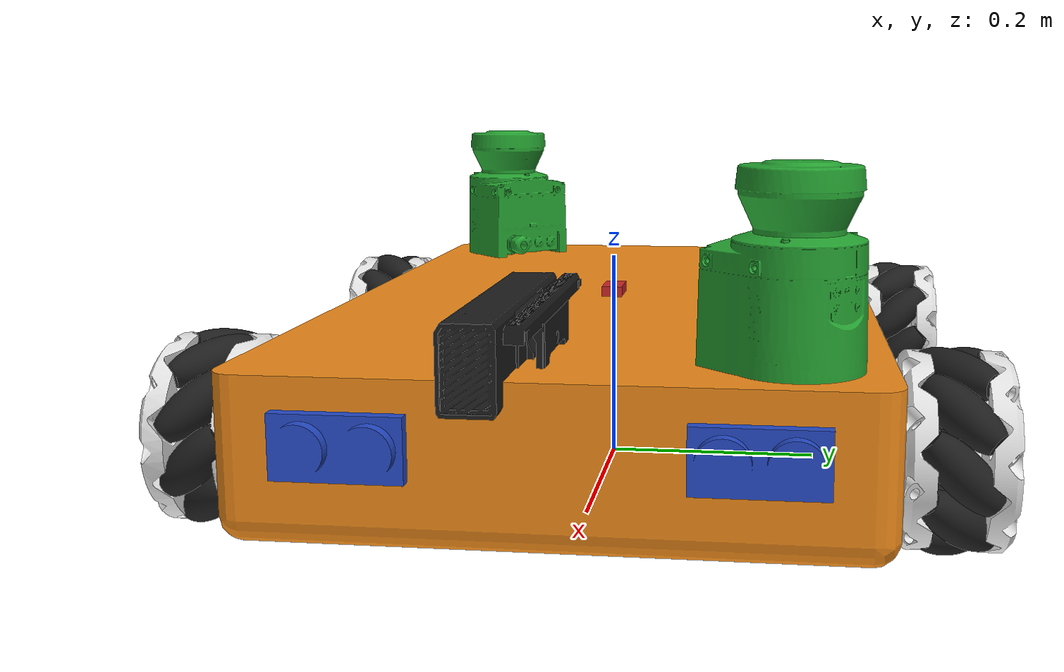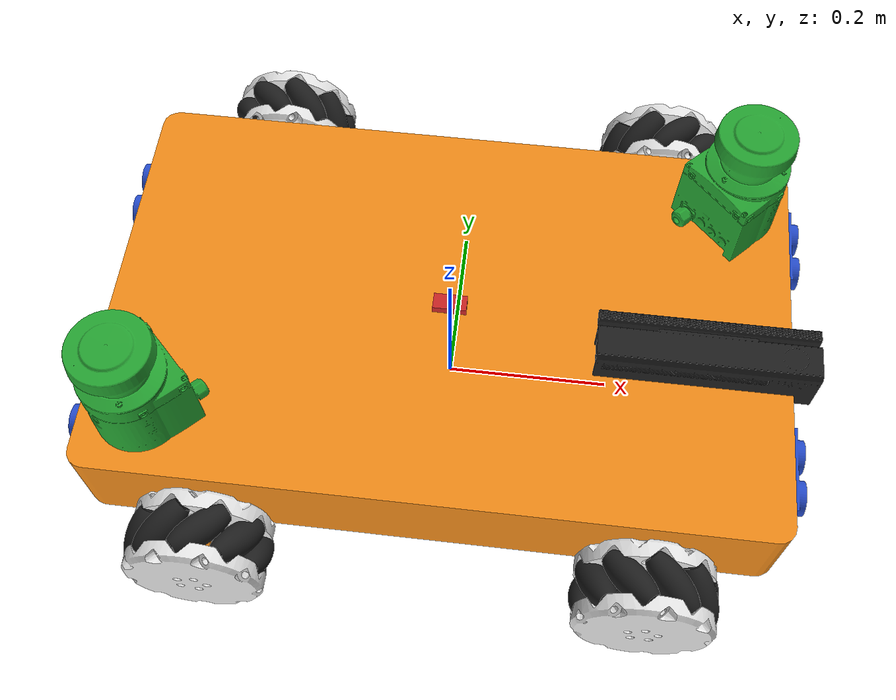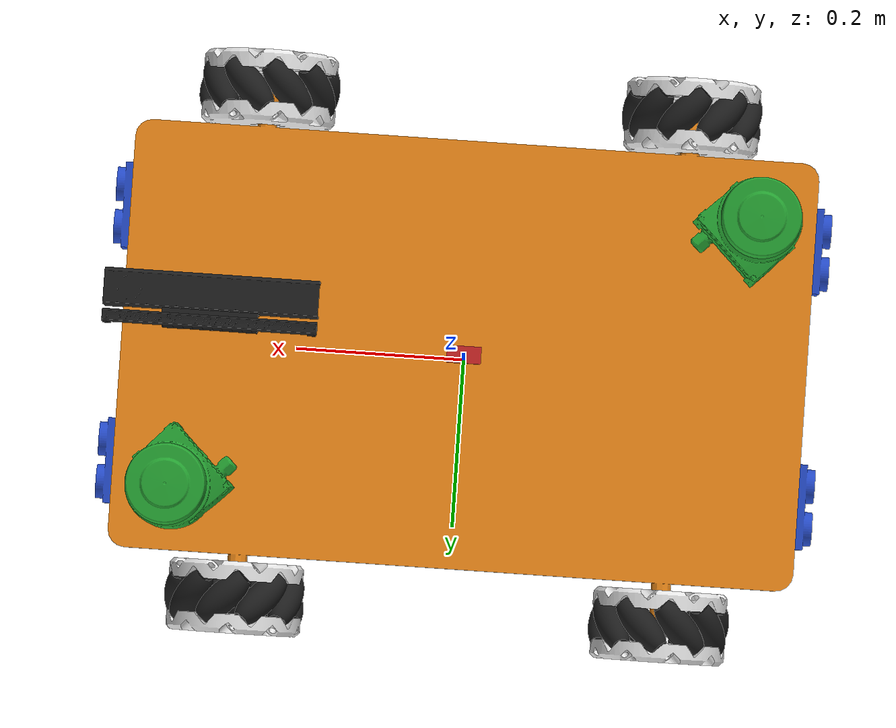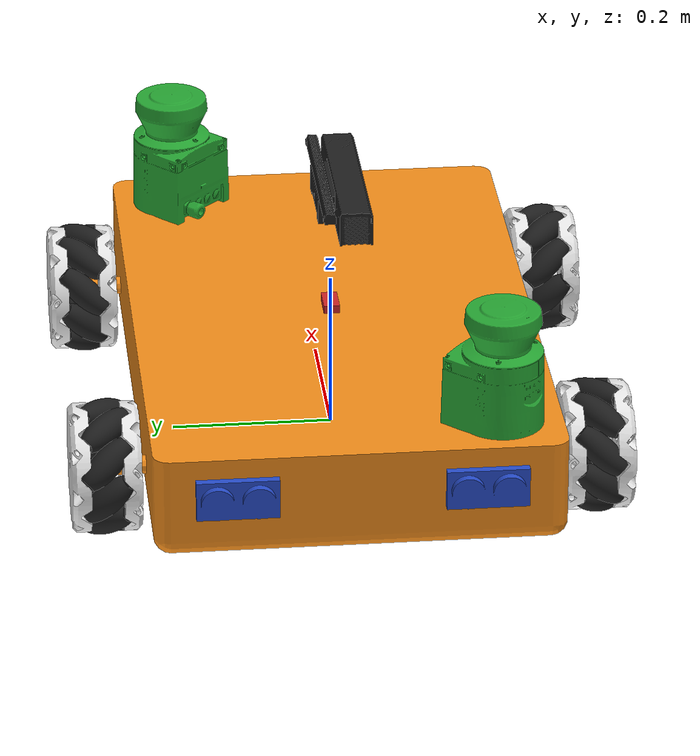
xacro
<?xml version="1.0"?>
<!-- Revolute-Revolute Manipulator -->
<robot name="zm_robot" xmlns:xacro="http://www.ros.org/wiki/xacro">

  <!-- Constants for robot dimensions -->
  <xacro:property name="wheel_rotationx" value="-1.5708"/>
  <xacro:property name="agv_base_h" value="0.081572" /> <!-- agv_base height -->
  <xacro:property name="wheel_before_L" value="0.25" /> <!-- wheel before L -->
  <xacro:property name="wheel_after_L" value="-0.25" /> <!-- wheel_after_L -->
  <xacro:property name="wheel_left_W" value="0.3" /> <!-- wheel left W -->
  <xacro:property name="wheel_right_W" value="-0.3" /> <!-- wheel right W -->

  <!-- ultrasound position on robot-->
  <xacro:property name="ul_left_front_x" value="0.4"/>
  <xacro:property name="ul_left_front_y" value="0.15" />
  <xacro:property name="ul_right_front_x" value="0.4" />
  <xacro:property name="ul_right_front_y" value="-0.15" />
  <xacro:property name="ul_left_rear_x" value="-0.4" />
  <xacro:property name="ul_left_rear_y" value="0.15" />
  <xacro:property name="ul_right_rear_x" value="-0.4" />
  <xacro:property name="ul_right_rear_y" value="-0.15" />
  <xacro:property name="ul_hight" value="0.03" />
  <xacro:property name="ul_front_rotation" value="0" />
  <xacro:property name="ul_rear_rotation" value="3.141592654" />

  <!-- roller position -->
  <xacro:property name="roller_1_y" value="0"/>
  <xacro:property name="roller_2_y" value="0.041781"/>
  <xacro:property name="roller_3_y" value="0.064012"/>
  <xacro:property name="roller_4_y" value="0.056291"/>
  <xacro:property name="roller_5_y" value="0.022231"/>
  <xacro:property name="roller_6_y" value="-0.022231"/>
  <xacro:property name="roller_7_y" value="-0.056291"/>
  <xacro:property name="roller_8_y" value="-0.064012"/>
  <xacro:property name="roller_9_y" value="-0.041781"/>
  <xacro:property name="roller_1_x" value="0.065"/>
  <xacro:property name="roller_2_x" value="0.049792"/>
  <xacro:property name="roller_3_x" value="0.011287"/>
  <xacro:property name="roller_4_x" value="-0.0325"/>
  <xacro:property name="roller_5_x" value="-0.06108"/>
  <xacro:property name="roller_6_x" value="-0.06108"/>
  <xacro:property name="roller_7_x" value="-0.0325"/>
  <xacro:property name="roller_8_x" value="0.011287"/>
  <xacro:property name="roller_9_x" value="0.049792"/>

  <!-- Import Rviz colors -->
  <xacro:include filename="$(find zm_robot_description)/urdf/materials.xacro" />

  <!-- Import rollor and wheel -->
  <xacro:include filename="$(find zm_robot_description)/urdf/zm_robot_roller.urdf.xacro"/>
  <xacro:include filename="$(find zm_robot_description)/urdf/zm_robot_wheel_LF.urdf.xacro"/>
  <xacro:include filename="$(find zm_robot_description)/urdf/zm_robot_wheel_LR.urdf.xacro"/>
  <xacro:include filename="$(find zm_robot_description)/urdf/zm_robot_wheel_RF.urdf.xacro"/>
  <xacro:include filename="$(find zm_robot_description)/urdf/zm_robot_wheel_RR.urdf.xacro"/>

  <!-- Import Ultrasound -->
  <xacro:include filename="$(find zm_robot_description)/urdf/zm_robot_ultrasound.urdf.xacro"/>

  <!-- Used for fixing robot to Gazebo 'base_link' -->
  <link name="base_footprint"/>

  <joint name="base_joint" type="fixed">
    <parent link="base_footprint"/>
    <child link="base_link"/>
    <origin xyz="0 0 ${agv_base_h}" rpy="0 0 0"/>
  </joint>

  <!-- Base Link -->
  <link name="base_link">
    <collision>
      <origin xyz="0 0 0" rpy="0 0 0"/>
      <geometry>
        <mesh filename="file://$(find zm_robot_description)/meshes/agv_base.stl" scale="0.01 0.01 0.01"/>
      </geometry>
    </collision>

    <visual>
      <origin xyz="0 0 0" rpy="0 0 0"/>
      <geometry>
        <mesh filename="file://$(find zm_robot_description)/meshes/agv_base.stl" scale="0.01 0.01 0.01"/>
      </geometry>
      <material name="orange"/>
    </visual>

    <inertial>
      <origin xyz="0 0 0" rpy="0 0 0"/>
      <mass value="29.964"/>
      <inertia ixx="0.892684320" ixy="0.0" ixz="0.0"
	             iyy="1.966612482" iyz="0.0"
	             izz="2.677227828"/>
    </inertial>
  </link>

  <!-- sick LiDAR 0 -->
  <joint name="sick_lidar0_joint" type="fixed">
    <parent link="base_link"/>
    <child link="sick_lidar0"/>
    <origin xyz="0.33 0.175 0.195722" rpy="0 0 0.7854"/>
  </joint>

  <link name="sick_lidar0">
    <collision>
      <origin xyz="0 0 0" rpy="0 0 0"/>
      <geometry>
        <mesh filename="file://$(find zm_robot_description)/meshes/sick_s30b.stl" scale="0.01 0.01 0.01"/>
      </geometry>
    </collision>

    <visual>
      <origin xyz="0 0 0" rpy="0 0 0"/>
      <geometry>
        <mesh filename="file://$(find zm_robot_description)/meshes/sick_s30b.stl" scale="0.01 0.01 0.01"/>
      </geometry>
      <material name="green"/>
    </visual>

    <inertial>
      <origin xyz="0 0 0" rpy="0 0 0"/>
      <mass value="1.2"/>
      <inertia ixx="0.0001" ixy="0.0" ixz="0.0"
	             iyy="0.0001" iyz="0.0"
	             izz="0.0001"/>
    </inertial>
  </link>

  <!-- sick LiDAR 1 -->
  <joint name="sick_lidar1_joint" type="fixed">
    <parent link="base_link"/>
    <child link="sick_lidar1"/>
    <origin xyz="-0.33 -0.175 0.195722" rpy="0 0 -2.35619"/>
  </joint>

  <link name="sick_lidar1">
    <collision>
      <origin xyz="0 0 0" rpy="0 0 0"/>
      <geometry>
        <mesh filename="file://$(find zm_robot_description)/meshes/sick_s30b.stl" scale="0.01 0.01 0.01"/>
      </geometry>
    </collision>

    <visual>
      <origin xyz="0 0 0" rpy="0 0 0"/>
      <geometry>
        <mesh filename="file://$(find zm_robot_description)/meshes/sick_s30b.stl" scale="0.01 0.01 0.01"/>
      </geometry>
      <material name="green"/>
    </visual>

    <inertial>
      <origin xyz="0 0 0" rpy="0 0 0"/>
      <mass value="1.2"/>
      <inertia ixx="0.0001" ixy="0.0" ixz="0.0"
	             iyy="0.0001" iyz="0.0"
	             izz="0.0001"/>
    </inertial>
  </link>

  <!-- kinect V2 -->
  <joint name="kinect_v2_joint " type="fixed">
    <parent link="base_link"/>
    <child link="kinect_v2"/>
    <origin xyz="0.297 -0.05 0.122015" rpy="0 0 0"/>
    <axis xyz="0 0 1"/>
  </joint>

  <link name="kinect_v2">
    <collision>
      <origin xyz="0 0 0" rpy="0 0 0"/>
      <geometry>
	      <mesh filename="file://$(find zm_robot_description)/meshes/kinect_v2.stl" scale="0.01 0.01 0.01"/>
      </geometry>
    </collision>

    <visual>
      <origin xyz="0 0 0" rpy="0 0 0"/>
      <geometry>
	      <mesh filename="file://$(find zm_robot_description)/meshes/kinect_v2.stl" scale="0.01 0.01 0.01"/>
      </geometry>
      <material name="black"/>
    </visual>

    <inertial>
      <origin xyz="0 0 0" rpy="0 0 0"/>
      <mass value="0.5"/>
      <inertia ixx="0.00005" ixy="0.0" ixz="0.0"
	             iyy="0.00005" iyz="0.0"
	             izz="0.00005"/>
    </inertial>
  </link>

  <!-- IMU -->
  <joint name="IMU_joint " type="fixed">
    <parent link="base_link"/>
    <child link="imu_link"/>
    <origin xyz="0 0 0.08" rpy="0 0 0"/>
    <axis xyz="0 0 1"/>
  </joint>

  <link name="imu_link">
    <sensor name="imu" type="imu">
      <update_rate>30</update_rate>
      <visualize>false</visualize>
    </sensor>
    <collision>
      <origin xyz="0 0 0" rpy="0 0 0"/>
      <geometry>
	      <mesh filename="file://$(find zm_robot_description)/meshes/IMU_sensor.stl" scale="0.01 0.01 0.01"/>
      </geometry>
    </collision>

    <visual>
      <origin xyz="0 0 0" rpy="0 0 0"/>
      <geometry>
	      <mesh filename="file://$(find zm_robot_description)/meshes/IMU_sensor.stl" scale="0.01 0.01 0.01"/>
      </geometry>
      <material name="red"/>
    </visual>

    <inertial>
      <origin xyz="0 0 0" rpy="0 0 0"/>
      <mass value="0.5"/>
      <inertia ixx="0.00005" ixy="0.0" ixz="0.0"
	             iyy="0.00005" iyz="0.0"
	            izz="0.00005"/>
    </inertial>
  </link>

  <!--zm robot LR wheel-->
  <xacro:zm_wheel_v1 prefix="1" parent="base_link" origin_x="${wheel_after_L}" origin_y="${wheel_left_W}" rotation_x="${wheel_rotationx}">
  </xacro:zm_wheel_v1>

  <!--zm robot LR rollor-->
  <xacro:zm_roller_v0 prefix="roller_1_1" parent="wheel_1" origin_x="${roller_1_y}" origin_y="${roller_1_x}"
                                                           rotation_x="0.7854" rotation_z="1.5708">
  </xacro:zm_roller_v0>

  <xacro:zm_roller_v0 prefix="roller_1_2" parent="wheel_1" origin_x="${roller_2_y}" origin_y="${roller_2_x}"
                                                           rotation_x="0.7854" rotation_z="0.8727">
  </xacro:zm_roller_v0>

  <xacro:zm_roller_v0 prefix="roller_1_3" parent="wheel_1" origin_x="${roller_3_y}" origin_y="${roller_3_x}"
                                                           rotation_x="0.7854" rotation_z="0.1746">
  </xacro:zm_roller_v0>

  <xacro:zm_roller_v0 prefix="roller_1_4" parent="wheel_1" origin_x="${roller_4_y}" origin_y="${roller_4_x}"
                                                           rotation_x="0.7854" rotation_z="-0.5235">
  </xacro:zm_roller_v0>

  <xacro:zm_roller_v0 prefix="roller_1_5" parent="wheel_1" origin_x="${roller_5_y}" origin_y="${roller_5_x}"
                                                           rotation_x="0.7854" rotation_z="-1.2216">
  </xacro:zm_roller_v0>

  <xacro:zm_roller_v0 prefix="roller_1_6" parent="wheel_1" origin_x="${roller_6_y}" origin_y="${roller_6_x}"
                                                           rotation_x="0.7854" rotation_z="4.3632">
  </xacro:zm_roller_v0>

  <xacro:zm_roller_v0 prefix="roller_1_7" parent="wheel_1" origin_x="${roller_7_y}" origin_y="${roller_7_x}"
                                                           rotation_x="0.7854" rotation_z="3.6651">
  </xacro:zm_roller_v0>

  <xacro:zm_roller_v0 prefix="roller_1_8" parent="wheel_1" origin_x="${roller_8_y}" origin_y="${roller_8_x}"
                                                           rotation_x="0.7854" rotation_z="2.967">
  </xacro:zm_roller_v0>

  <xacro:zm_roller_v0 prefix="roller_1_9" parent="wheel_1" origin_x="${roller_9_y}" origin_y="${roller_9_x}"
                                                           rotation_x="0.7854" rotation_z="2.2689">
  </xacro:zm_roller_v0>

  <!--zm robot LF wheel-->
  <xacro:zm_wheel_v2 prefix="2" parent="base_link" origin_x="${wheel_before_L}" origin_y="${wheel_left_W}" rotation_x="${wheel_rotationx}">
  </xacro:zm_wheel_v2>

  <!--zm robot LF rollor-->
  <xacro:zm_roller_v0 prefix="roller_2_1" parent="wheel_2" origin_x="${roller_1_x}" origin_y="${roller_1_y}"
                                                           rotation_x="-0.7854" rotation_z="0">
  </xacro:zm_roller_v0>

  <xacro:zm_roller_v0 prefix="roller_2_2" parent="wheel_2" origin_x="${roller_2_x}" origin_y="${roller_2_y}"
                                                           rotation_x="-0.7854" rotation_z="0.6981">
  </xacro:zm_roller_v0>

  <xacro:zm_roller_v0 prefix="roller_2_3" parent="wheel_2" origin_x="${roller_3_x}" origin_y="${roller_3_y}"
                                                           rotation_x="-0.7854" rotation_z="1.3962">
  </xacro:zm_roller_v0>

  <xacro:zm_roller_v0 prefix="roller_2_4" parent="wheel_2" origin_x="${roller_4_x}" origin_y="${roller_4_y}"
                                                           rotation_x="-0.7854" rotation_z="2.0943">
  </xacro:zm_roller_v0>

  <xacro:zm_roller_v0 prefix="roller_2_5" parent="wheel_2" origin_x="${roller_5_x}" origin_y="${roller_5_y}"
                                                           rotation_x="-0.7854" rotation_z="2.7924">
  </xacro:zm_roller_v0>

  <xacro:zm_roller_v0 prefix="roller_2_6" parent="wheel_2" origin_x="${roller_6_x}" origin_y="${roller_6_y}"
                                                           rotation_x="-0.7854" rotation_z="-2.7924">
  </xacro:zm_roller_v0>

  <xacro:zm_roller_v0 prefix="roller_2_7" parent="wheel_2" origin_x="${roller_7_x}" origin_y="${roller_7_y}"
                                                           rotation_x="-0.7854" rotation_z="-2.0943">
  </xacro:zm_roller_v0>

  <xacro:zm_roller_v0 prefix="roller_2_8" parent="wheel_2" origin_x="${roller_8_x}" origin_y="${roller_8_y}"
                                                           rotation_x="-0.7854" rotation_z="-1.3962">
  </xacro:zm_roller_v0>

  <xacro:zm_roller_v0 prefix="roller_2_9" parent="wheel_2" origin_x="${roller_9_x}" origin_y="${roller_9_y}"
                                                           rotation_x="-0.7854" rotation_z="-0.6981">
  </xacro:zm_roller_v0>

  <!--zm robot RF wheel-->
  <xacro:zm_wheel_v3 prefix="3" parent="base_link" origin_x="${wheel_before_L}" origin_y="${wheel_right_W}" rotation_x="${wheel_rotationx}">
  </xacro:zm_wheel_v3>

  <!--zm robot RF rollor-->
  <xacro:zm_roller_v0 prefix="roller_3_1" parent="wheel_3" origin_x="${roller_1_y}" origin_y="${roller_1_x}"
                                                           rotation_x="0.7854" rotation_z="1.5708">
  </xacro:zm_roller_v0>

  <xacro:zm_roller_v0 prefix="roller_3_2" parent="wheel_3" origin_x="${roller_2_y}" origin_y="${roller_2_x}"
                                                           rotation_x="0.7854" rotation_z="0.8727">
  </xacro:zm_roller_v0>

  <xacro:zm_roller_v0 prefix="roller_3_3" parent="wheel_3" origin_x="${roller_3_y}" origin_y="${roller_3_x}"
                                                           rotation_x="0.7854" rotation_z="0.1746">
  </xacro:zm_roller_v0>

  <xacro:zm_roller_v0 prefix="roller_3_4" parent="wheel_3" origin_x="${roller_4_y}" origin_y="${roller_4_x}"
                                                           rotation_x="0.7854" rotation_z="-0.5235">
  </xacro:zm_roller_v0>

  <xacro:zm_roller_v0 prefix="roller_3_5" parent="wheel_3" origin_x="${roller_5_y}" origin_y="${roller_5_x}"
                                                           rotation_x="0.7854" rotation_z="-1.2216">
  </xacro:zm_roller_v0>

  <xacro:zm_roller_v0 prefix="roller_3_6" parent="wheel_3" origin_x="${roller_6_y}" origin_y="${roller_6_x}"
                                                           rotation_x="0.7854" rotation_z="4.3632">
  </xacro:zm_roller_v0>

  <xacro:zm_roller_v0 prefix="roller_3_7" parent="wheel_3" origin_x="${roller_7_y}" origin_y="${roller_7_x}"
                                                           rotation_x="0.7854" rotation_z="3.6651">
  </xacro:zm_roller_v0>

  <xacro:zm_roller_v0 prefix="roller_3_8" parent="wheel_3" origin_x="${roller_8_y}" origin_y="${roller_8_x}"
                                                           rotation_x="0.7854" rotation_z="2.967">
  </xacro:zm_roller_v0>

  <xacro:zm_roller_v0 prefix="roller_3_9" parent="wheel_3" origin_x="${roller_9_y}" origin_y="${roller_9_x}"
                                                           rotation_x="0.7854" rotation_z="2.2689">
  </xacro:zm_roller_v0>

  <!--zm robot RR wheel-->
  <xacro:zm_wheel_v4 prefix="4" parent="base_link" origin_x="${wheel_after_L}" origin_y="${wheel_right_W}" rotation_x="${wheel_rotationx}">
  </xacro:zm_wheel_v4>

  <!--zm robot RR rollor-->
  <xacro:zm_roller_v0 prefix="roller_4_1" parent="wheel_4" origin_x="${roller_1_x}" origin_y="${roller_1_y}"
                                                           rotation_x="-0.7854" rotation_z="0">
  </xacro:zm_roller_v0>

  <xacro:zm_roller_v0 prefix="roller_4_2" parent="wheel_4" origin_x="${roller_2_x}" origin_y="${roller_2_y}"
                                                           rotation_x="-0.7854" rotation_z="0.6981">
  </xacro:zm_roller_v0>

  <xacro:zm_roller_v0 prefix="roller_4_3" parent="wheel_4" origin_x="${roller_3_x}" origin_y="${roller_3_y}"
                                                           rotation_x="-0.7854" rotation_z="1.3962">
  </xacro:zm_roller_v0>

  <xacro:zm_roller_v0 prefix="roller_4_4" parent="wheel_4" origin_x="${roller_4_x}" origin_y="${roller_4_y}"
                                                           rotation_x="-0.7854" rotation_z="2.0943">
  </xacro:zm_roller_v0>

  <xacro:zm_roller_v0 prefix="roller_4_5" parent="wheel_4" origin_x="${roller_5_x}" origin_y="${roller_5_y}"
                                                           rotation_x="-0.7854" rotation_z="2.7924">
  </xacro:zm_roller_v0>

  <xacro:zm_roller_v0 prefix="roller_4_6" parent="wheel_4" origin_x="${roller_6_x}" origin_y="${roller_6_y}"
                                                           rotation_x="-0.7854" rotation_z="-2.7924">
  </xacro:zm_roller_v0>

  <xacro:zm_roller_v0 prefix="roller_4_7" parent="wheel_4" origin_x="${roller_7_x}" origin_y="${roller_7_y}"
                                                           rotation_x="-0.7854" rotation_z="-2.0943">
  </xacro:zm_roller_v0>

  <xacro:zm_roller_v0 prefix="roller_4_8" parent="wheel_4" origin_x="${roller_8_x}" origin_y="${roller_8_y}"
                                                           rotation_x="-0.7854" rotation_z="-1.3962">
  </xacro:zm_roller_v0>

  <xacro:zm_roller_v0 prefix="roller_4_9" parent="wheel_4" origin_x="${roller_9_x}" origin_y="${roller_9_y}"
                                                           rotation_x="-0.7854" rotation_z="-0.6981">
  </xacro:zm_roller_v0>

  <!-- ultrasound -->
  <xacro:zm_ultrasound prefix="1" parent="base_link" origin_x="${ul_left_front_x}" origin_y="${ul_left_front_y}"
                                                     origin_z="${ul_hight}" rotation_z="${ul_front_rotation}">
  </xacro:zm_ultrasound>

  <xacro:zm_ultrasound prefix="2" parent="base_link" origin_x="${ul_right_front_x}" origin_y="${ul_right_front_y}"
                                                     origin_z="${ul_hight}" rotation_z="${ul_front_rotation}">
  </xacro:zm_ultrasound>

  <xacro:zm_ultrasound prefix="3" parent="base_link" origin_x="${ul_left_rear_x}" origin_y="${ul_left_rear_y}"
                                                     origin_z="${ul_hight}" rotation_z="${ul_rear_rotation}">
  </xacro:zm_ultrasound>

  <xacro:zm_ultrasound prefix="4" parent="base_link" origin_x="${ul_right_rear_x}" origin_y="${ul_right_rear_y}"
                                                     origin_z="${ul_hight}" rotation_z="${ul_rear_rotation}">
  </xacro:zm_ultrasound>
</robot>

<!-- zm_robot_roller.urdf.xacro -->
<robot xmlns:xacro="http://ros.org/wiki/xacro">

  <xacro:macro name="zm_roller_v0" params="prefix parent origin_x origin_y rotation_x rotation_z">
	<joint name="${prefix}_joint" type="fixed">
	  <parent link="${parent}"/>
	  <child link="${prefix}"/>
	  <origin xyz="${origin_x} ${origin_y} 0" rpy="${rotation_x} 0 ${rotation_z}"/>
      <axis xyz="0 0 1"/>
	  <dynamics damping="0.0" friction="0.0"/>
	</joint>

	<link name="${prefix}">
	  <visual>
		<geometry>
		  <mesh filename="file://$(find zm_robot_description)/meshes/mecanum_roller.stl" scale="0.01 0.01 0.01"/>
		</geometry>
		<material name="black"/>
	  </visual>
	  <collision>
		<geometry>
		  <mesh filename="file://$(find zm_robot_description)/meshes/mecanum_roller.stl" scale="0.01 0.01 0.01"/>
		</geometry>
	  </collision>
	  <inertial>
		<origin xyz="0 0 0" rpy="0 0 0"/>
        <mass value="0.124"/>
        <inertia ixx="0.0051893" ixy="0.0" ixz="0.0" iyy="0.0051893" iyz="0.0" izz="0.0013891"/>
	  </inertial>
	</link>
  </xacro:macro>

</robot>

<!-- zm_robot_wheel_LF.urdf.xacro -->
<robot xmlns:xacro="http://ros.org/wiki/xacro">

  <xacro:macro name="zm_wheel_v2" params="prefix parent origin_x origin_y rotation_x">
	<joint name="wheel_joint_${prefix}" type="fixed">
	  <parent link="${parent}"/>
	  <child link="wheel_${prefix}"/>
	  <origin xyz="${origin_x} ${origin_y} 0" rpy="${rotation_x} 0 0"/>
      <axis xyz="0 0 1"/>
	  <dynamics damping="3.0" friction="5.0"/>
	</joint>

	<link name="wheel_${prefix}">
	  <visual>
		<geometry>
		  <mesh filename="file://$(find zm_robot_description)/meshes/mecanum_left_before.stl" scale="0.01 0.01 0.01"/>
		</geometry>
		<material name="white"/>
	  </visual>
	  <collision>
		<geometry>
		  <mesh filename="file://$(find zm_robot_description)/meshes/mecanum_left_before.stl" scale="0.01 0.01 0.01"/>
		</geometry>
	  </collision>

	  <inertial>
          <origin xyz="0.001 0 0" rpy="0 0 0"/>
          <mass value="1.7"/>
          <inertia ixx="0.04248052" ixy="0.0" ixz="0.0"
	               iyy="0.04248045" iyz="0.0" izz="0.04879970"/>
      </inertial>
	</link>
  </xacro:macro>
</robot>

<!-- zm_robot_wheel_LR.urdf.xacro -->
<robot xmlns:xacro="http://ros.org/wiki/xacro">

  <xacro:macro name="zm_wheel_v1" params="prefix parent origin_x origin_y rotation_x">
	<joint name="wheel_joint_${prefix}" type="fixed">
	  <parent link="${parent}"/>
	  <child link="wheel_${prefix}"/>
	  <origin xyz="${origin_x} ${origin_y} 0" rpy="${rotation_x} 0 0"/>
      <axis xyz="0 0 1"/>
	  <dynamics damping="3.0" friction="5.0"/>
	</joint>

	<link name="wheel_${prefix}">
	  <visual>
		<geometry>
		  <mesh filename="file://$(find zm_robot_description)/meshes/mecanum_left_after.stl" scale="0.01 0.01 0.01"/>
		</geometry>
		<material name="white"/>
	  </visual>
	  <collision>
		<geometry>
		  <mesh filename="file://$(find zm_robot_description)/meshes/mecanum_left_after.stl" scale="0.01 0.01 0.01"/>
		</geometry>
	  </collision>
	  <inertial>
          <origin xyz="0.001 0 0" rpy="0 0 0"/>
          <mass value="1.7"/>
          <inertia ixx="0.04248052" ixy="0.0" ixz="0.0"
	               iyy="0.04248045" iyz="0.0" izz="0.04879970"/>
      </inertial>
	</link>
  </xacro:macro>
</robot>

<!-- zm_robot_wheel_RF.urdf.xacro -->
<robot xmlns:xacro="http://ros.org/wiki/xacro">

  <xacro:macro name="zm_wheel_v3" params="prefix parent origin_x origin_y rotation_x">
	<joint name="wheel_joint_${prefix}" type="fixed">
	  <parent link="${parent}"/>
	  <child link="wheel_${prefix}"/>
	  <origin xyz="${origin_x} ${origin_y} 0" rpy="${rotation_x} 0 0"/>
      <axis xyz="0 0 1"/>
	  <dynamics damping="3.0" friction="5.0"/>
	</joint>

	<link name="wheel_${prefix}">
	  <visual>
		<geometry>
		  <mesh filename="file://$(find zm_robot_description)/meshes/mecanum_right_before.stl" scale="0.01 0.01 0.01"/>
		</geometry>
		<material name="white"/>
	  </visual>
	  <collision>
		<geometry>
		  <mesh filename="file://$(find zm_robot_description)/meshes/mecanum_right_before.stl" scale="0.01 0.01 0.01"/>
		</geometry>
	  </collision>
	  <inertial>
          <origin xyz="-0.001 0 0" rpy="0 0 0"/>
          <mass value="1.7"/>
          <inertia ixx="0.04248052" ixy="0.0" ixz="0.0"
	               iyy="0.04248045" iyz="0.0" izz="0.04879970"/>
      </inertial>
	</link>
  </xacro:macro>
</robot>

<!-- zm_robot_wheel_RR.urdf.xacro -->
<robot xmlns:xacro="http://ros.org/wiki/xacro">

  <xacro:macro name="zm_wheel_v4" params="prefix parent origin_x origin_y rotation_x">
	<joint name="wheel_joint_${prefix}" type="fixed">
	  <parent link="${parent}"/>
	  <child link="wheel_${prefix}"/>
	  <origin xyz="${origin_x} ${origin_y} 0" rpy="${rotation_x} 0 0"/>
      <axis xyz="0 0 1"/>
	  <dynamics damping="3.0" friction="5.0"/>
	</joint>

	<link name="wheel_${prefix}">
	  <visual>
		<geometry>
		  <mesh filename="file://$(find zm_robot_description)/meshes/mecanum_right_after.stl" scale="0.01 0.01 0.01"/>
		</geometry>
		<material name="white"/>
	  </visual>
	  <collision>
		<geometry>
		  <mesh filename="file://$(find zm_robot_description)/meshes/mecanum_right_after.stl" scale="0.01 0.01 0.01"/>
		</geometry>
	  </collision>
	  <inertial>
          <origin xyz="-0.001 0 0" rpy="0 0 0"/>
          <mass value="1.7"/>
          <inertia ixx="0.04248052" ixy="0.0" ixz="0.0"
	               iyy="0.04248045" iyz="0.0" izz="0.04879970"/>
      </inertial>
	</link>
  </xacro:macro>
</robot>

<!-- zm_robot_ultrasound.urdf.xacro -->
<robot xmlns:xacro="http://ros.org/wiki/xacro">

  <xacro:macro name="zm_ultrasound" params="prefix parent origin_x origin_y origin_z rotation_z">
	<joint name="ultrasound_joint_${prefix}" type="fixed">
	  <parent link="${parent}"/>
	  <child link="ultrasound_${prefix}"/>
	  <origin xyz="${origin_x} ${origin_y} ${origin_z}" rpy="0 0 ${rotation_z}"/>
      <axis xyz="0 0 1"/>
	  <dynamics damping="3.0" friction="5.0"/>
	</joint>

	<link name="ultrasound_${prefix}">
	  <visual>
		<geometry>
		  <mesh filename="file://$(find zm_robot_description)/meshes/ultrasound.stl" scale="0.1 0.1 0.1"/>
		</geometry>
		<material name="blue"/>
	  </visual>
	  <collision>
		<geometry>
		  <mesh filename="file://$(find zm_robot_description)/meshes/ultrasound.stl" scale="0.1 0.1 0.1"/>
		</geometry>
	  </collision>

	  <inertial>
          <origin xyz="0.008 0 0" rpy="0 0 0"/>
          <mass value="0.075"/>
          <inertia ixx="0.002" ixy="0.0" ixz="0.0"
	               iyy="0.0" iyz="0.0" izz="0.002"/>
      </inertial>
	</link>
  </xacro:macro>
</robot>
